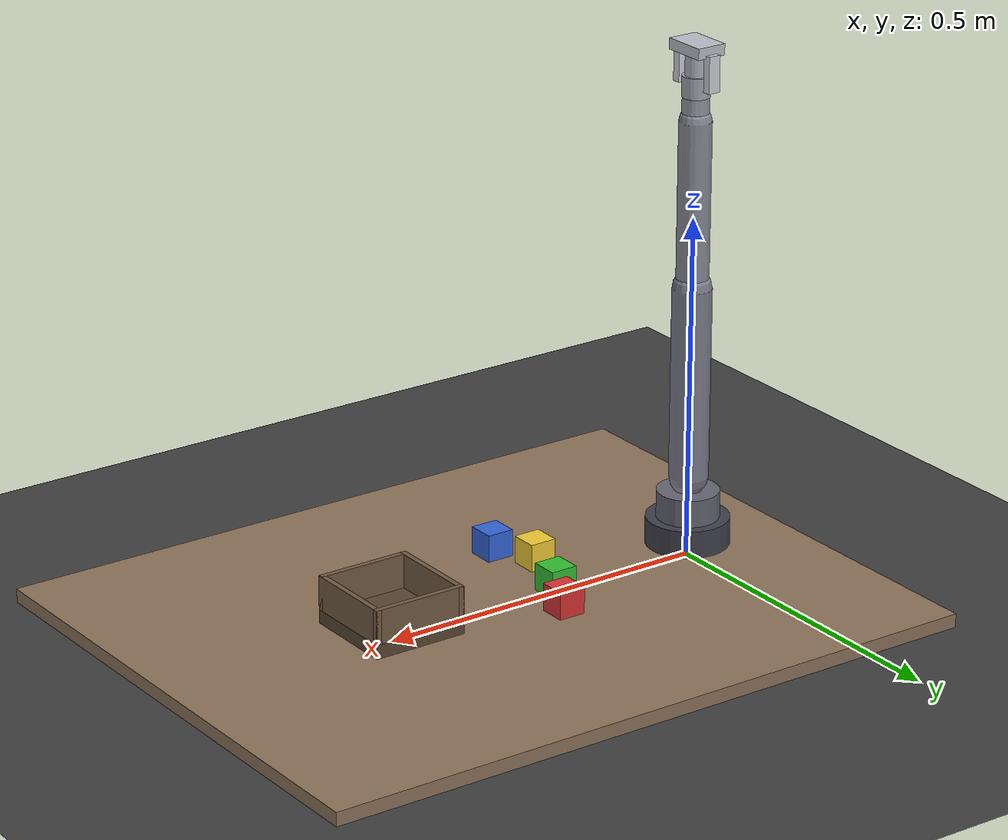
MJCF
<mujoco model="so101_pickplace">
  <compiler angle="radian" meshdir="."/>

  <option timestep="0.002" gravity="0 0 -9.81" integrator="implicitfast"/>

  <asset>
    <texture name="grid" type="2d" builtin="checker" rgb1="0.2 0.2 0.2" rgb2="0.3 0.3 0.3" width="512" height="512"/>
    <material name="grid" texture="grid" texrepeat="4 4"/>
    <texture name="sky" type="skybox" builtin="gradient" rgb1="0.3 0.5 0.7" rgb2="0.1 0.1 0.15" width="256" height="256"/>
  </asset>

  <default>
    <joint armature="0.01" damping="1" limited="true"/>
    <geom contype="1" conaffinity="1" friction="1.2 0.02 0.001" solref="0.005 1"/>
    <position kp="900" kv="60" forcerange="-350 350"/>
  </default>

  <worldbody>
    <light diffuse="0.9 0.9 0.9" pos="0.3 0 2.5" dir="0 0 -1" directional="true"/>
    <light diffuse="0.4 0.4 0.4" pos="1.5 1.5 2" dir="-0.5 -0.5 -0.8"/>

    <!-- Cameras used by render(); camera1 is the demo view. -->
    <camera name="camera1" pos="0.78 -0.58 0.62" xyaxes="0.6 0.8 0 -0.42 0.31 0.85"/>
    <camera name="camera2" pos="0.35 0 1.3" xyaxes="1 0 0 0 1 0"/>

    <geom name="floor" type="plane" size="3 3 0.1" pos="0 0 0" material="grid"/>
    <geom name="table" type="box" size="0.5 0.4 0.01" pos="0.35 0 0.01" rgba="0.55 0.45 0.35 1"/>

    <!-- Blocks: real free bodies so they can be grasped, lifted and dropped. -->
    <body name="red_block" pos="0.28 0.09 0.04">
      <freejoint name="red_block_free"/>
      <geom name="red_block_geom" type="box" size="0.02 0.02 0.02" rgba="0.85 0.2 0.2 1" mass="0.05"/>
    </body>
    <body name="green_block" pos="0.25 0.03 0.04">
      <freejoint name="green_block_free"/>
      <geom name="green_block_geom" type="box" size="0.02 0.02 0.02" rgba="0.2 0.75 0.2 1" mass="0.05"/>
    </body>
    <body name="yellow_block" pos="0.22 -0.06 0.04">
      <freejoint name="yellow_block_free"/>
      <geom name="yellow_block_geom" type="box" size="0.02 0.02 0.02" rgba="0.95 0.8 0.2 1" mass="0.05"/>
    </body>
    <body name="blue_block" pos="0.25 -0.12 0.04">
      <freejoint name="blue_block_free"/>
      <geom name="blue_block_geom" type="box" size="0.02 0.02 0.02" rgba="0.2 0.4 0.85 1" mass="0.05"/>
    </body>

    <!-- Bin. Floor top sits at z=0.04 so a resting block centres at z=0.06,
         which is exactly TARGET_REGIONS["bin"] in configs/settings.py. -->
    <body name="bin_body" pos="0.5 0 0.02">
      <geom name="bin_base" type="box" size="0.07 0.07 0.01" pos="0 0 0.01" rgba="0.35 0.28 0.2 1"/>
      <geom name="bin_wall_back" type="box" size="0.07 0.004 0.025" pos="0 0.066 0.045" rgba="0.45 0.36 0.26 1"/>
      <geom name="bin_wall_front" type="box" size="0.07 0.004 0.025" pos="0 -0.066 0.045" rgba="0.45 0.36 0.26 1"/>
      <geom name="bin_wall_left" type="box" size="0.004 0.07 0.025" pos="-0.066 0 0.045" rgba="0.45 0.36 0.26 1"/>
      <geom name="bin_wall_right" type="box" size="0.004 0.07 0.025" pos="0.066 0 0.045" rgba="0.45 0.36 0.26 1"/>
    </body>

    <!-- Arm. Link lengths chosen so the wrist reaches the bin at r=0.5.
         Shoulder pivot is at z=0.12; see SO101Environment.SHOULDER_Z. -->
    <body name="base_link" pos="0 0 0.02">
      <geom name="base" type="cylinder" size="0.06 0.03" pos="0 0 0.01" rgba="0.25 0.25 0.3 1"/>

      <body name="link1" gravcomp="1" pos="0 0 0.06">
        <joint name="joint1" type="hinge" axis="0 0 1" range="-3.14 3.14" pos="0 0 0"/>
        <geom contype="0" conaffinity="0" type="cylinder" size="0.045 0.02" rgba="0.4 0.4 0.45 1"/>

        <body name="link2" gravcomp="1" pos="0 0 0.04">
          <joint name="joint2" type="hinge" axis="0 1 0" range="-3.14 3.14" pos="0 0 0"/>
          <geom contype="0" conaffinity="0" type="capsule" fromto="0 0 0 0 0 0.28" size="0.028" rgba="0.5 0.5 0.56 1"/>

          <body name="link3" gravcomp="1" pos="0 0 0.28">
            <joint name="joint3" type="hinge" axis="0 1 0" range="-3.14 3.14" pos="0 0 0"/>
            <geom contype="0" conaffinity="0" type="capsule" fromto="0 0 0 0 0 0.24" size="0.023" rgba="0.55 0.55 0.6 1"/>

            <body name="link4" gravcomp="1" pos="0 0 0.24">
              <joint name="joint4" type="hinge" axis="0 1 0" range="-3.14 3.14" pos="0 0 0"/>
              <geom contype="0" conaffinity="0" type="capsule" fromto="0 0 0 0 0 0.05" size="0.019" rgba="0.6 0.6 0.65 1"/>

              <body name="link5" gravcomp="1" pos="0 0 0.05">
                <joint name="joint5" type="hinge" axis="0 0 1" range="-3.14 3.14" pos="0 0 0"/>
                <geom contype="0" conaffinity="0" type="cylinder" size="0.02 0.015" rgba="0.65 0.65 0.7 1"/>

                <body name="link6" gravcomp="1" pos="0 0 0.03">
                  <joint name="joint6" type="hinge" axis="0 1 0" range="-3.14 3.14" pos="0 0 0"/>
                  <geom contype="0" conaffinity="0" type="cylinder" size="0.016 0.015" rgba="0.7 0.7 0.75 1"/>

                  <body name="end_effector" gravcomp="1" pos="0 0 0.025">
                    <geom name="gripper_base" type="box" size="0.022 0.032 0.008"
                          rgba="0.75 0.75 0.8 1" contype="0" conaffinity="0"/>
                    <!-- grip_site sits at the finger centre, so an IK target at a block's
                         centre height makes the pads straddle it. -->
                    <site name="grip_site" pos="0 0 -0.030" size="0.006" rgba="1 0 0 0.35"/>

                    <body name="left_finger" gravcomp="1" pos="0 0.033 -0.030">
                      <joint name="left_finger_joint" type="slide" axis="0 -1 0" range="0 0.0135" damping="12"/>
                      <geom name="left_finger_geom" type="box" size="0.009 0.006 0.026"
                            rgba="0.82 0.82 0.86 1" friction="6.0 0.2 0.01"
                            solref="0.004 1" solimp="0.95 0.99 0.001"/>
                    </body>

                    <body name="right_finger" gravcomp="1" pos="0 -0.033 -0.030">
                      <joint name="right_finger_joint" type="slide" axis="0 1 0" range="0 0.0135" damping="12"/>
                      <geom name="right_finger_geom" type="box" size="0.009 0.006 0.026"
                            rgba="0.82 0.82 0.86 1" friction="6.0 0.2 0.01"
                            solref="0.004 1" solimp="0.95 0.99 0.001"/>
                    </body>
                  </body>
                </body>
              </body>
            </body>
          </body>
        </body>
      </body>
    </body>
  </worldbody>

  <actuator>
    <position name="act_joint1" joint="joint1" ctrlrange="-3.14 3.14"/>
    <position name="act_joint2" joint="joint2" ctrlrange="-3.14 3.14"/>
    <position name="act_joint3" joint="joint3" ctrlrange="-3.14 3.14"/>
    <position name="act_joint4" joint="joint4" ctrlrange="-3.14 3.14"/>
    <position name="act_joint5" joint="joint5" ctrlrange="-3.14 3.14"/>
    <position name="act_joint6" joint="joint6" ctrlrange="-3.14 3.14"/>
    <position name="act_left_finger" joint="left_finger_joint" ctrlrange="0 0.0135" kp="900" kv="30" forcerange="-300 300"/>
    <position name="act_right_finger" joint="right_finger_joint" ctrlrange="0 0.0135" kp="900" kv="30" forcerange="-300 300"/>
  </actuator>

  <sensor>
    <jointpos name="joint1_pos" joint="joint1"/>
    <jointpos name="joint2_pos" joint="joint2"/>
    <jointpos name="joint3_pos" joint="joint3"/>
    <jointpos name="joint4_pos" joint="joint4"/>
    <jointpos name="joint5_pos" joint="joint5"/>
    <jointpos name="joint6_pos" joint="joint6"/>
  </sensor>
</mujoco>
